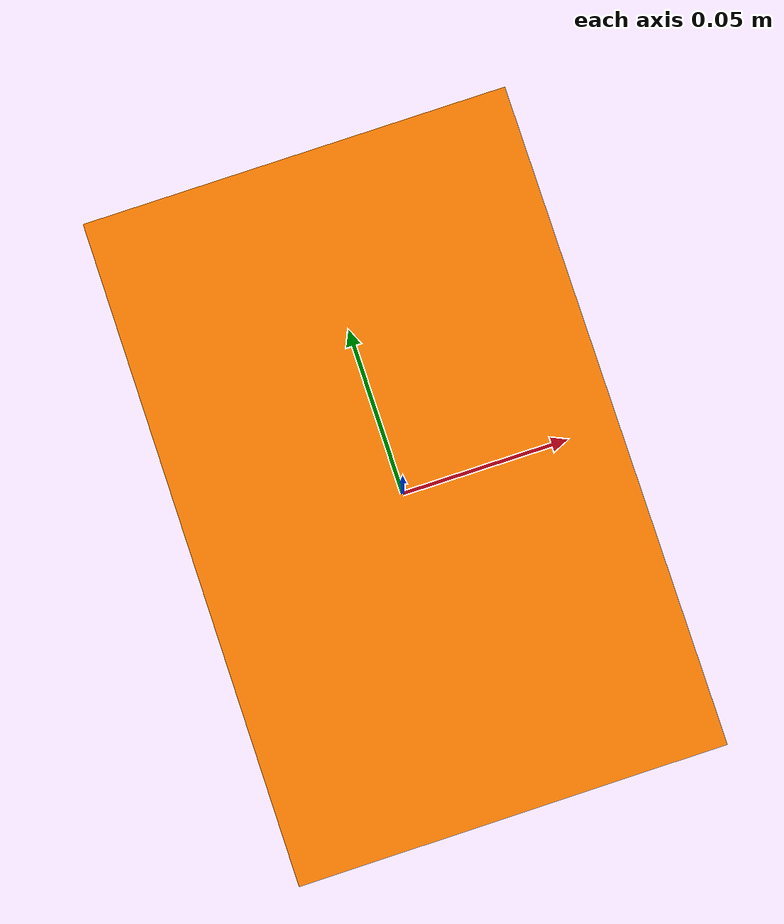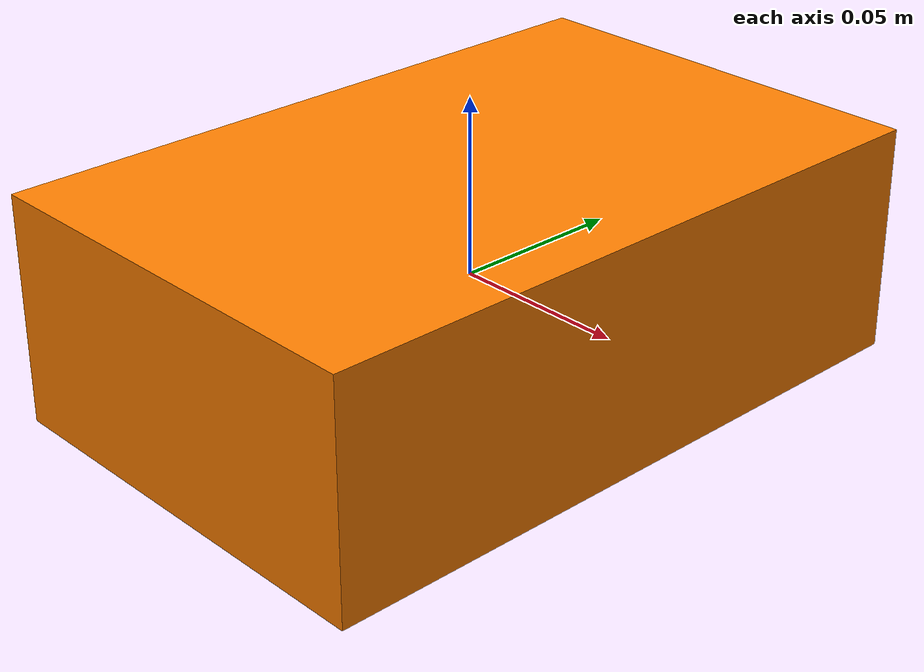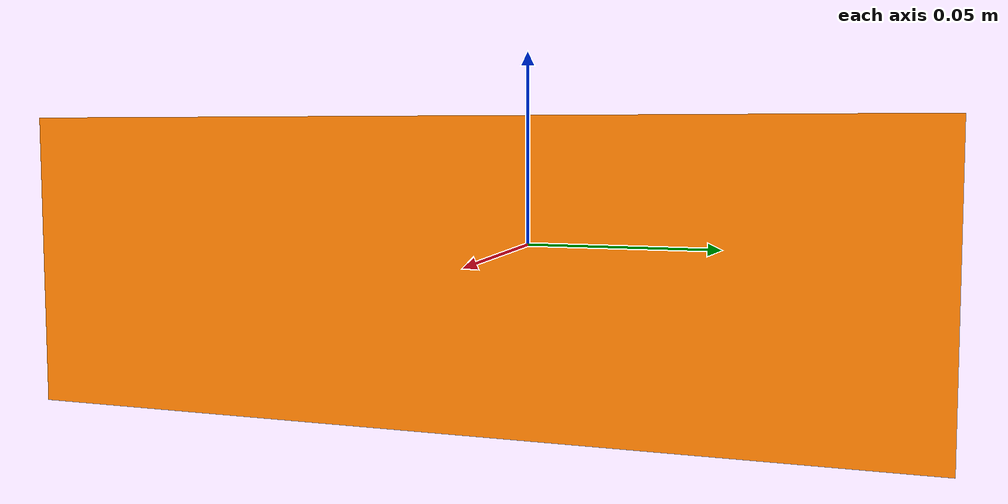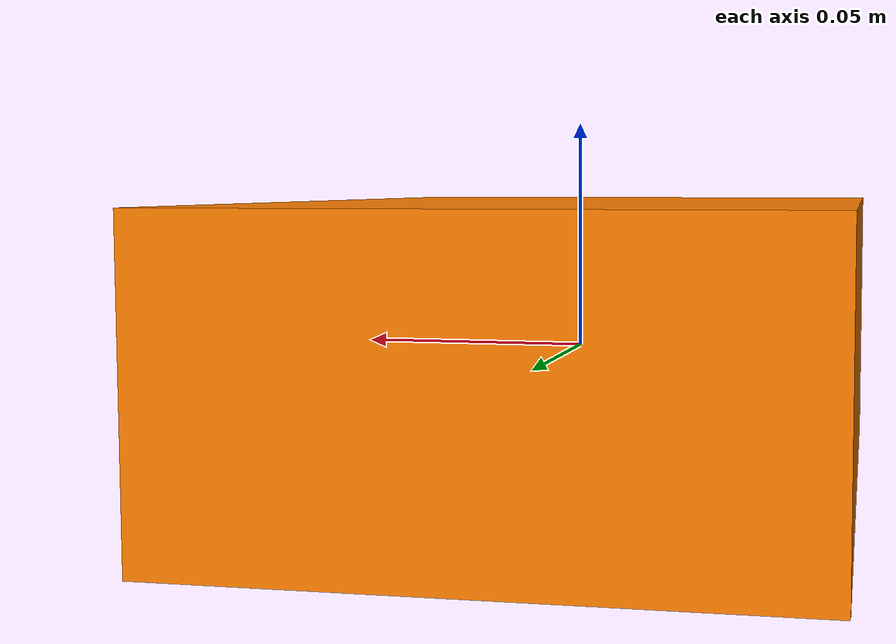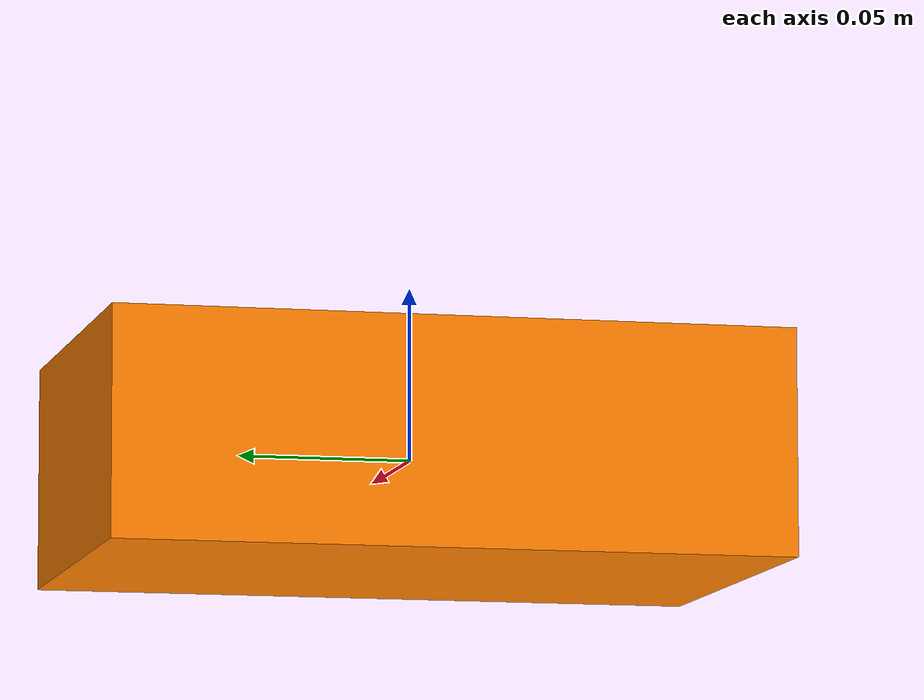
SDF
<?xml version="1.0"?>
<sdf version="1.7">
  <model name="cheezit_big_original">
    <static>false</static>
    <link name="link">
      <pose>0 0 0 0 0 0</pose>
      <inertial>
        <mass>0.15</mass>
        <inertia>
          <ixx>0.0005</ixx>
          <iyy>0.0015</iyy>
          <izz>0.0015</izz>
        </inertia>
      </inertial>

      <collision name="collision">
        <geometry>
          <box>
            <size>0.125 0.195 0.065</size>
          </box>
        </geometry>
        <surface>
          <friction>
            <ode>
              <mu>1.0</mu>
              <mu2>1.0</mu2>
            </ode>
          </friction>
        </surface>
      </collision>

      <visual name="visual">
        <geometry>
          <box>
            <size>0.125 0.195 0.065</size>
          </box>
        </geometry>
        <material>
          <ambient>1.0 0.5 0.0 1</ambient>
          <diffuse>1.0 0.5 0.0 1</diffuse>
          <specular>1.0 0.5 0.0 1</specular>
        </material>
      </visual>
    </link>
  </model>
</sdf>
